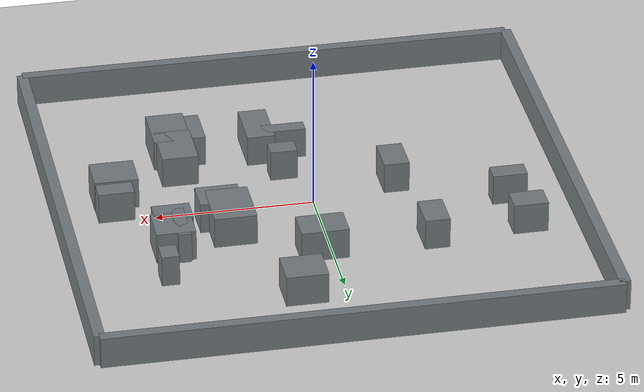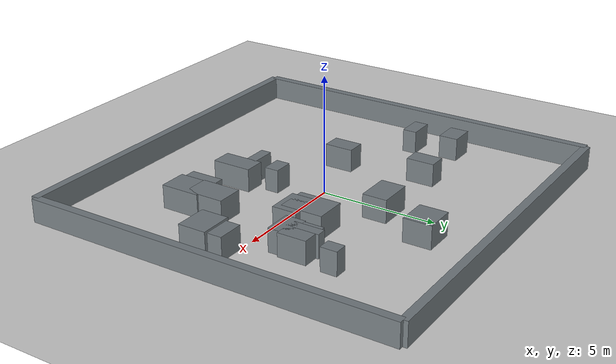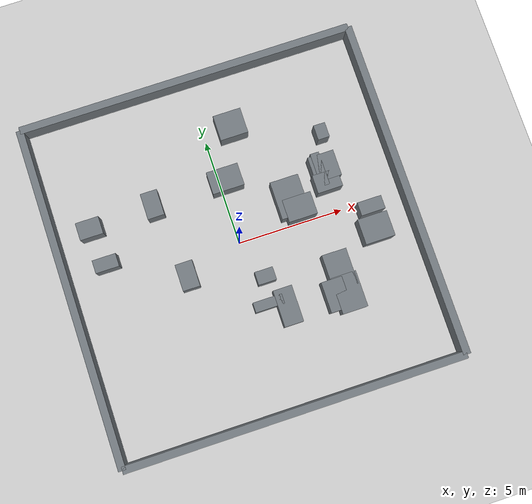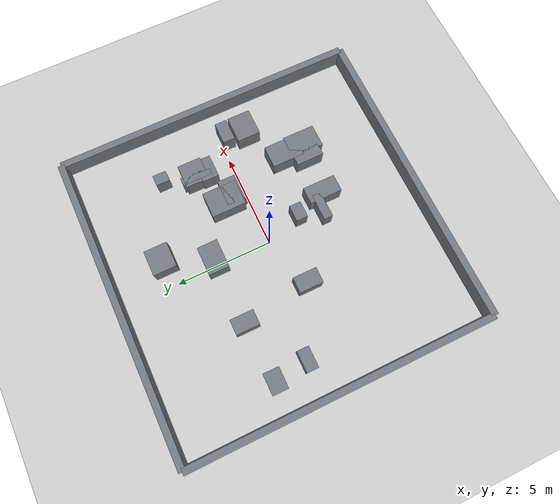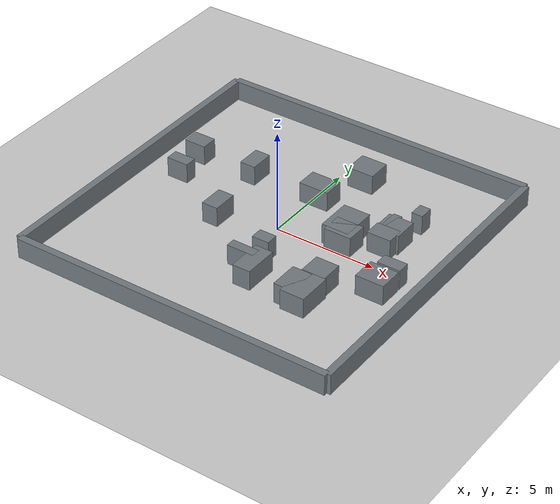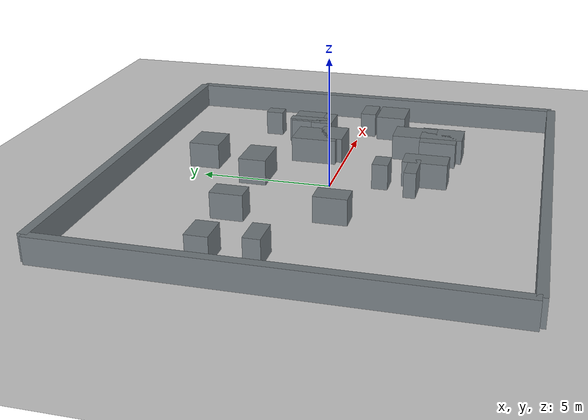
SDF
<?xml version="1.0" ?>
<sdf version="1.10">
  <world name="random_blocks_3">
    <physics name="1ms" type="ignored">
      <max_step_size>0.001</max_step_size>
      <real_time_factor>1.0</real_time_factor>
    </physics>
    <plugin filename="gz-sim-physics-system" name="gz::sim::systems::Physics"/>
    <plugin filename="gz-sim-user-commands-system" name="gz::sim::systems::UserCommands"/>
    <plugin filename="gz-sim-scene-broadcaster-system" name="gz::sim::systems::SceneBroadcaster"/>
    <light name="sun" type="directional">
      <pose>0 0 10 0 0 0</pose>
      <diffuse>0.8 0.8 0.8 1</diffuse>
      <specular>0.2 0.2 0.2 1</specular>
      <direction>-0.5 0.1 -0.9</direction>
    </light>
    <model name="ground_plane">
      <static>true</static>
      <link name="link">
        <collision name="collision"><geometry><plane><normal>0 0 1</normal><size>30 30</size></plane></geometry></collision>
        <visual name="visual"><geometry><plane><normal>0 0 1</normal><size>30 30</size></plane></geometry></visual>
      </link>
    </model>

    <model name="boundary_north">
      <static>true</static>
      <pose>0.000 8.000 0.500 0 0 0</pose>
      <link name="link">
        <collision name="collision">
          <geometry><box><size>16.000 0.350 1.000</size></box></geometry>
        </collision>
        <visual name="visual">
          <geometry><box><size>16.000 0.350 1.000</size></box></geometry>
          <material><ambient>0.45 0.48 0.50 1</ambient><diffuse>0.45 0.48 0.50 1</diffuse></material>
        </visual>
      </link>
    </model>
    <model name="boundary_south">
      <static>true</static>
      <pose>0.000 -8.000 0.500 0 0 0</pose>
      <link name="link">
        <collision name="collision">
          <geometry><box><size>16.000 0.350 1.000</size></box></geometry>
        </collision>
        <visual name="visual">
          <geometry><box><size>16.000 0.350 1.000</size></box></geometry>
          <material><ambient>0.45 0.48 0.50 1</ambient><diffuse>0.45 0.48 0.50 1</diffuse></material>
        </visual>
      </link>
    </model>
    <model name="boundary_west">
      <static>true</static>
      <pose>-8.000 0.000 0.500 0 0 0</pose>
      <link name="link">
        <collision name="collision">
          <geometry><box><size>0.350 16.000 1.000</size></box></geometry>
        </collision>
        <visual name="visual">
          <geometry><box><size>0.350 16.000 1.000</size></box></geometry>
          <material><ambient>0.45 0.48 0.50 1</ambient><diffuse>0.45 0.48 0.50 1</diffuse></material>
        </visual>
      </link>
    </model>
    <model name="boundary_east">
      <static>true</static>
      <pose>8.000 0.000 0.500 0 0 0</pose>
      <link name="link">
        <collision name="collision">
          <geometry><box><size>0.350 16.000 1.000</size></box></geometry>
        </collision>
        <visual name="visual">
          <geometry><box><size>0.350 16.000 1.000</size></box></geometry>
          <material><ambient>0.45 0.48 0.50 1</ambient><diffuse>0.45 0.48 0.50 1</diffuse></material>
        </visual>
      </link>
    </model>
    <model name="block_3_0">
      <static>true</static>
      <pose>-2.701 -0.771 0.500 0 0 0</pose>
      <link name="link">
        <collision name="collision">
          <geometry><box><size>0.807 1.245 1.000</size></box></geometry>
        </collision>
        <visual name="visual">
          <geometry><box><size>0.807 1.245 1.000</size></box></geometry>
          <material><ambient>0.45 0.48 0.50 1</ambient><diffuse>0.45 0.48 0.50 1</diffuse></material>
        </visual>
      </link>
    </model>
    <model name="block_3_1">
      <static>true</static>
      <pose>4.529 1.978 0.500 0 0 0</pose>
      <link name="link">
        <collision name="collision">
          <geometry><box><size>0.414 1.572 1.000</size></box></geometry>
        </collision>
        <visual name="visual">
          <geometry><box><size>0.414 1.572 1.000</size></box></geometry>
          <material><ambient>0.45 0.48 0.50 1</ambient><diffuse>0.45 0.48 0.50 1</diffuse></material>
        </visual>
      </link>
    </model>
    <model name="block_3_2">
      <static>true</static>
      <pose>0.288 2.912 0.500 0 0 0</pose>
      <link name="link">
        <collision name="collision">
          <geometry><box><size>1.495 1.058 1.000</size></box></geometry>
        </collision>
        <visual name="visual">
          <geometry><box><size>1.495 1.058 1.000</size></box></geometry>
          <material><ambient>0.45 0.48 0.50 1</ambient><diffuse>0.45 0.48 0.50 1</diffuse></material>
        </visual>
      </link>
    </model>
    <model name="block_3_3">
      <static>true</static>
      <pose>-6.033 0.903 0.500 0 0 0</pose>
      <link name="link">
        <collision name="collision">
          <geometry><box><size>1.103 0.611 1.000</size></box></geometry>
        </collision>
        <visual name="visual">
          <geometry><box><size>1.103 0.611 1.000</size></box></geometry>
          <material><ambient>0.45 0.48 0.50 1</ambient><diffuse>0.45 0.48 0.50 1</diffuse></material>
        </visual>
      </link>
    </model>
    <model name="block_3_4">
      <static>true</static>
      <pose>3.372 -3.681 0.500 0 0 0</pose>
      <link name="link">
        <collision name="collision">
          <geometry><box><size>0.975 1.438 1.000</size></box></geometry>
        </collision>
        <visual name="visual">
          <geometry><box><size>0.975 1.438 1.000</size></box></geometry>
          <material><ambient>0.45 0.48 0.50 1</ambient><diffuse>0.45 0.48 0.50 1</diffuse></material>
        </visual>
      </link>
    </model>
    <model name="block_3_5">
      <static>true</static>
      <pose>4.778 2.033 0.500 0 0 0</pose>
      <link name="link">
        <collision name="collision">
          <geometry><box><size>1.234 1.228 1.000</size></box></geometry>
        </collision>
        <visual name="visual">
          <geometry><box><size>1.234 1.228 1.000</size></box></geometry>
          <material><ambient>0.45 0.48 0.50 1</ambient><diffuse>0.45 0.48 0.50 1</diffuse></material>
        </visual>
      </link>
    </model>
    <model name="block_3_6">
      <static>true</static>
      <pose>3.097 0.611 0.500 0 0 0</pose>
      <link name="link">
        <collision name="collision">
          <geometry><box><size>1.352 1.062 1.000</size></box></geometry>
        </collision>
        <visual name="visual">
          <geometry><box><size>1.352 1.062 1.000</size></box></geometry>
          <material><ambient>0.45 0.48 0.50 1</ambient><diffuse>0.45 0.48 0.50 1</diffuse></material>
        </visual>
      </link>
    </model>
    <model name="block_3_7">
      <static>true</static>
      <pose>3.947 -3.763 0.500 0 0 0</pose>
      <link name="link">
        <collision name="collision">
          <geometry><box><size>1.186 1.690 1.000</size></box></geometry>
        </collision>
        <visual name="visual">
          <geometry><box><size>1.186 1.690 1.000</size></box></geometry>
          <material><ambient>0.45 0.48 0.50 1</ambient><diffuse>0.45 0.48 0.50 1</diffuse></material>
        </visual>
      </link>
    </model>
    <model name="block_3_8">
      <static>true</static>
      <pose>1.155 -3.486 0.500 0 0 0</pose>
      <link name="link">
        <collision name="collision">
          <geometry><box><size>0.889 1.710 1.000</size></box></geometry>
        </collision>
        <visual name="visual">
          <geometry><box><size>0.889 1.710 1.000</size></box></geometry>
          <material><ambient>0.45 0.48 0.50 1</ambient><diffuse>0.45 0.48 0.50 1</diffuse></material>
        </visual>
      </link>
    </model>
    <model name="block_3_9">
      <static>true</static>
      <pose>5.183 3.640 0.500 0 0 0</pose>
      <link name="link">
        <collision name="collision">
          <geometry><box><size>0.550 0.704 1.000</size></box></geometry>
        </collision>
        <visual name="visual">
          <geometry><box><size>0.550 0.704 1.000</size></box></geometry>
          <material><ambient>0.45 0.48 0.50 1</ambient><diffuse>0.45 0.48 0.50 1</diffuse></material>
        </visual>
      </link>
    </model>
    <model name="block_3_10">
      <static>true</static>
      <pose>-6.270 2.659 0.500 0 0 0</pose>
      <link name="link">
        <collision name="collision">
          <geometry><box><size>1.089 0.821 1.000</size></box></geometry>
        </collision>
        <visual name="visual">
          <geometry><box><size>1.089 0.821 1.000</size></box></geometry>
          <material><ambient>0.45 0.48 0.50 1</ambient><diffuse>0.45 0.48 0.50 1</diffuse></material>
        </visual>
      </link>
    </model>
    <model name="block_3_11">
      <static>true</static>
      <pose>-3.233 2.819 0.500 0 0 0</pose>
      <link name="link">
        <collision name="collision">
          <geometry><box><size>0.786 1.219 1.000</size></box></geometry>
        </collision>
        <visual name="visual">
          <geometry><box><size>0.786 1.219 1.000</size></box></geometry>
          <material><ambient>0.45 0.48 0.50 1</ambient><diffuse>0.45 0.48 0.50 1</diffuse></material>
        </visual>
      </link>
    </model>
    <model name="block_3_12">
      <static>true</static>
      <pose>3.885 -2.669 0.500 0 0 0</pose>
      <link name="link">
        <collision name="collision">
          <geometry><box><size>1.150 1.701 1.000</size></box></geometry>
        </collision>
        <visual name="visual">
          <geometry><box><size>1.150 1.701 1.000</size></box></geometry>
          <material><ambient>0.45 0.48 0.50 1</ambient><diffuse>0.45 0.48 0.50 1</diffuse></material>
        </visual>
      </link>
    </model>
    <model name="block_3_13">
      <static>true</static>
      <pose>6.200 -0.351 0.500 0 0 0</pose>
      <link name="link">
        <collision name="collision">
          <geometry><box><size>1.138 0.628 1.000</size></box></geometry>
        </collision>
        <visual name="visual">
          <geometry><box><size>1.138 0.628 1.000</size></box></geometry>
          <material><ambient>0.45 0.48 0.50 1</ambient><diffuse>0.45 0.48 0.50 1</diffuse></material>
        </visual>
      </link>
    </model>
    <model name="block_3_14">
      <static>true</static>
      <pose>6.080 -1.374 0.500 0 0 0</pose>
      <link name="link">
        <collision name="collision">
          <geometry><box><size>1.395 1.197 1.000</size></box></geometry>
        </collision>
        <visual name="visual">
          <geometry><box><size>1.395 1.197 1.000</size></box></geometry>
          <material><ambient>0.45 0.48 0.50 1</ambient><diffuse>0.45 0.48 0.50 1</diffuse></material>
        </visual>
      </link>
    </model>
    <model name="block_3_15">
      <static>true</static>
      <pose>1.312 5.265 0.500 0 0 0</pose>
      <link name="link">
        <collision name="collision">
          <geometry><box><size>1.315 1.203 1.000</size></box></geometry>
        </collision>
        <visual name="visual">
          <geometry><box><size>1.315 1.203 1.000</size></box></geometry>
          <material><ambient>0.45 0.48 0.50 1</ambient><diffuse>0.45 0.48 0.50 1</diffuse></material>
        </visual>
      </link>
    </model>
    <model name="block_3_16">
      <static>true</static>
      <pose>2.827 1.191 0.500 0 0 0</pose>
      <link name="link">
        <collision name="collision">
          <geometry><box><size>1.339 1.786 1.000</size></box></geometry>
        </collision>
        <visual name="visual">
          <geometry><box><size>1.339 1.786 1.000</size></box></geometry>
          <material><ambient>0.45 0.48 0.50 1</ambient><diffuse>0.45 0.48 0.50 1</diffuse></material>
        </visual>
      </link>
    </model>
    <model name="block_3_17">
      <static>true</static>
      <pose>0.621 -1.887 0.500 0 0 0</pose>
      <link name="link">
        <collision name="collision">
          <geometry><box><size>0.852 0.611 1.000</size></box></geometry>
        </collision>
        <visual name="visual">
          <geometry><box><size>0.852 0.611 1.000</size></box></geometry>
          <material><ambient>0.45 0.48 0.50 1</ambient><diffuse>0.45 0.48 0.50 1</diffuse></material>
        </visual>
      </link>
    </model>
    <model name="block_3_18">
      <static>true</static>
      <pose>0.367 -3.095 0.500 0 0 0</pose>
      <link name="link">
        <collision name="collision">
          <geometry><box><size>1.360 0.462 1.000</size></box></geometry>
        </collision>
        <visual name="visual">
          <geometry><box><size>1.360 0.462 1.000</size></box></geometry>
          <material><ambient>0.45 0.48 0.50 1</ambient><diffuse>0.45 0.48 0.50 1</diffuse></material>
        </visual>
      </link>
    </model>
    <model name="block_3_19">
      <static>true</static>
      <pose>4.687 1.360 0.500 0 0 0</pose>
      <link name="link">
        <collision name="collision">
          <geometry><box><size>1.190 0.863 1.000</size></box></geometry>
        </collision>
        <visual name="visual">
          <geometry><box><size>1.190 0.863 1.000</size></box></geometry>
          <material><ambient>0.45 0.48 0.50 1</ambient><diffuse>0.45 0.48 0.50 1</diffuse></material>
        </visual>
      </link>
    </model>
  </world>
</sdf>
